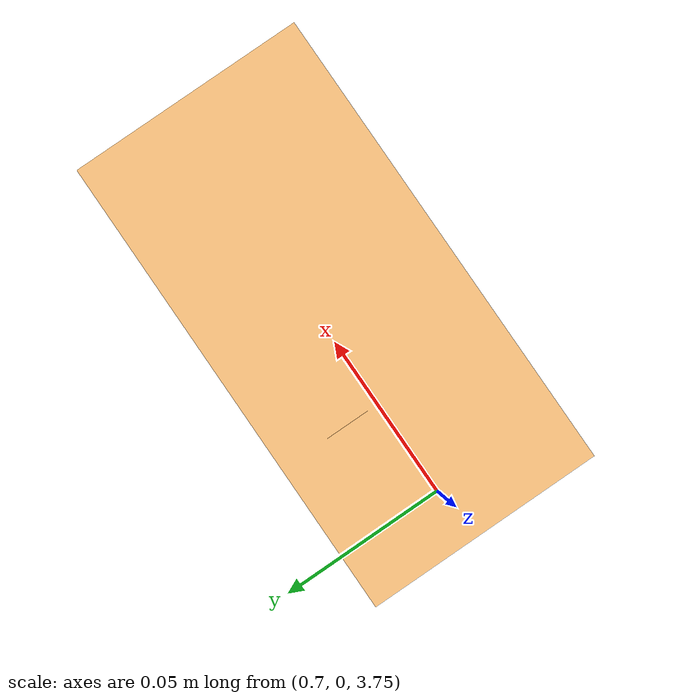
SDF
<?xml version="1.0"?>
<sdf version="1.9">
  <world name="scene">

    <model name="box">
      <pose>0.75 0 3.8 0 0 0</pose>
      <link name="box_top_link">
        <inertial>
          <inertia>
            <ixx>0.00667</ixx>
            <iyy>0.00667</iyy>
            <izz>0.00667</izz>
            <ixy>0</ixy>
            <ixz>0</ixz>
            <iyz>0</iyz>
          </inertia>
          <mass>0.5</mass>
        </inertial>
        <collision name="collision">
          <geometry>
          <box>
            <size>0.1 0.05 0.1</size>
          </box>
          </geometry>
          <drake:proximity_properties>
            <drake:mu_dynamic>0.3</drake:mu_dynamic>
            <drake:mu_static>0.3</drake:mu_static>
            <drake:mesh_resolution_hint>0.05</drake:mesh_resolution_hint>
            <drake:hydroelastic_modulus>1.0e7</drake:hydroelastic_modulus>
            <drake:hunt_crossley_dissipation>5</drake:hunt_crossley_dissipation>
            <drake:compliant_hydroelastic/>
          </drake:proximity_properties>
        </collision>
        <visual name="visual">
          <geometry>
          <box>
            <size>0.1 0.05 0.1</size>
          </box>
          </geometry>
          <material>
            <diffuse>1.0 0.55 0.0 0.5</diffuse>
          </material>
        </visual>
      </link>
  <frame name="box_top_center">
      <pose relative_to="box_top_link">0 0 0 0 0 0</pose>
    </frame>
    </model>

 <model name="table_top">
    <link name="table_top_link">
            <inertial>
          <mass>5</mass>
        </inertial>
      <visual name="visual">
        <pose>0 0 0.445 0 0 0</pose>
        <geometry>
          <box>
            <size>0.55 1.1 0.05</size>
          </box>
        </geometry>
        <material>
         <diffuse>0.9 0.8 0.7 1.0</diffuse>
        </material>
      </visual>
      <collision name="collision">
        <pose>0 0 0.445  0 0 0</pose>
        <geometry>
          <box>
            <size>0.55 1.1 0.05</size>
          </box>
        </geometry>
          <drake:proximity_properties>
            <drake:mu_dynamic>0.1</drake:mu_dynamic>
            <drake:mu_static>0.1</drake:mu_static>
            <drake:mesh_resolution_hint>0.5</drake:mesh_resolution_hint>
            <drake:hunt_crossley_dissipation>5</drake:hunt_crossley_dissipation>
            <drake:rigid_hydroelastic/>
          </drake:proximity_properties>
      </collision>
    </link>
    <frame name="table_top_center">
      <pose relative_to="table_top_link">0 0 0.47 0 0 0</pose>
    </frame>
  </model>
    </world>
</sdf>
